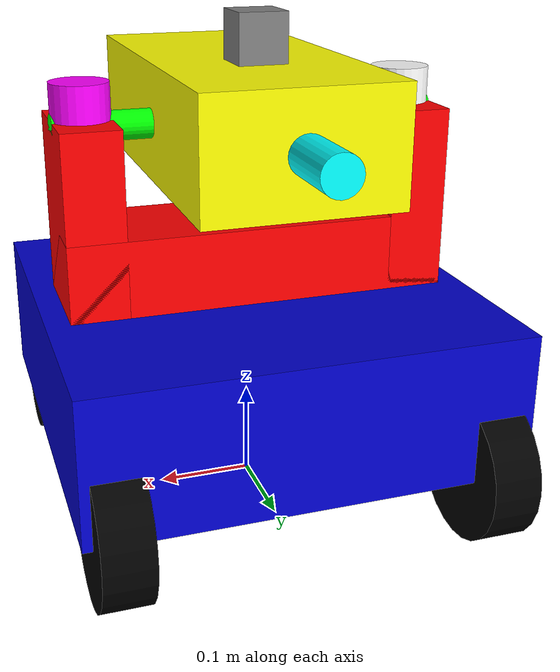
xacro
<?xml version="1.0"?>
<robot name="sentry_robot" xmlns:xacro="http://ros.org/wiki/xacro">

  <!-- Chassis (OnShape chassis_link collision: 0.45 x 0.38 x 0.45, Y-up)
       Footprint 0.45 x 0.45m kept; height simplified to 0.15m for flat chassis body. -->
  <xacro:property name="base_width"  value="0.45"/>
  <xacro:property name="base_length" value="0.45"/>
  <xacro:property name="base_height" value="0.15"/>

  <!-- Wheel centers are at chassis_link origin height in OnShape (Y ~= 0 offset).
       So ground_offset = wheel_radius (wheels just touch the ground). -->
  <xacro:property name="ground_offset" value="0.076"/>

  <!-- Wheel dims from OnShape collision: cylinder radius=0.076, length=0.05 -->
  <xacro:property name="wheel_radius" value="0.076"/>
  <xacro:property name="wheel_width"  value="0.05"/>
  <xacro:property name="wheel_mass"   value="1.2"/>

  <!-- Wheel separation from chassis center.
       OnShape wheel positions form a 45-deg-rotated square at radius ~0.272m.
       Symmetric half-separation = 0.272 / sqrt(2) = 0.192m -> rounded to 0.19m. -->
  <xacro:property name="wheel_sep" value="0.19"/>

  <!-- Gimbal yaw motor (OnShape base_link collision: cylinder r=0.06, L=0.15) -->
  <xacro:property name="gimbal_radius" value="0.06"/>
  <xacro:property name="gimbal_height" value="0.15"/>

  <xacro:property name="turret_arm_width"        value="0.40"/>
  <xacro:property name="support_width"           value="0.06"/>
  <xacro:property name="support_length"          value="0.12"/>
  <xacro:property name="support_base_height"     value="0.08"/>
  <xacro:property name="support_standoff_height" value="0.19"/>

  <xacro:property name="turret_shaft_radius" value="0.015"/>

  <xacro:property name="turret_length" value="0.20"/>
  <xacro:property name="turret_height" value="0.12"/>
  <xacro:property name="gun_length"    value="0.30"/>

  <!-- Lidar dims (unchanged from original) -->
  <xacro:property name="lidar_length" value="0.054"/>
  <xacro:property name="lidar_width"  value="0.0414"/>
  <xacro:property name="lidar_height" value="0.0348"/>

  <!-- Robot total mass from OnShape chassis_link inertial: 9.0 kg -->
  <xacro:property name="mass" value="9.0"/>

  <!-- ==================== Inertia macros ==================== -->
  <xacro:macro name="box_inertia" params="m w h d">
    <inertial>
      <origin xyz="0 0 0" rpy="0 0 0"/>
      <mass value="${m}"/>
      <inertia
        ixx="${(m/12) * (h*h + d*d)}"
        ixy="0" ixz="0"
        iyy="${(m/12) * (w*w + d*d)}"
        iyz="0"
        izz="${(m/12) * (w*w + h*h)}"/>
    </inertial>
  </xacro:macro>

  <xacro:macro name="cylinder_inertia" params="m rad h">
    <inertial>
      <origin xyz="0 0 0" rpy="0 0 0"/>
      <mass value="${m}"/>
      <inertia
        ixx="${(m/12) * (3*rad*rad + h*h)}"
        ixy="0" ixz="0"
        iyy="${(m/12) * (3*rad*rad + h*h)}"
        iyz="0"
        izz="${(m/2) * (rad*rad)}"/>
    </inertial>
  </xacro:macro>

  <!-- ==================== base_link (chassis body) ==================== -->
  <!-- Origin at ground level; chassis body drawn above it. -->
  <link name="base_link">
    <visual>
      <origin xyz="0 0 ${base_height/2 + ground_offset}" rpy="0 0 0"/>
      <geometry>
        <box size="${base_width} ${base_length} ${base_height}"/>
      </geometry>
      <material name="blue">
        <color rgba="0 0 0.8 1"/>
      </material>
    </visual>
    <collision>
      <origin xyz="0 0 ${base_height/2 + ground_offset}" rpy="0 0 0"/>
      <geometry>
        <box size="${base_width} ${base_length} ${base_height}"/>
      </geometry>
    </collision>
    <xacro:box_inertia m="${mass}" w="${base_width}" d="${base_length}" h="${base_height}"/>
  </link>

  <!-- ==================== Wheels ==================== -->
  <!-- All four wheels use symmetric ±wheel_sep positions in X (left/right)
       and ±wheel_sep in Y (front/back). wheel_sep = 0.19m from OnShape diagonal. -->

  <!-- Front Left Wheel -->
  <link name="front_left_wheel">
    <visual>
      <geometry>
        <cylinder radius="${wheel_radius}" length="${wheel_width}"/>
      </geometry>
      <origin xyz="0 0 0" rpy="0 0 0"/>
      <material name="black">
        <color rgba="0 0 0 1"/>
      </material>
    </visual>
    <collision>
      <geometry>
        <cylinder radius="${wheel_radius}" length="${wheel_width}"/>
      </geometry>
      <origin xyz="0 0 0" rpy="0 0 0"/>
    </collision>
    <xacro:cylinder_inertia m="${wheel_mass}" rad="${wheel_radius}" h="${wheel_width}"/>
  </link>

  <joint name="front_left_wheel_joint" type="continuous">
    <parent link="base_link"/>
    <child link="front_left_wheel"/>
    <!-- +X = left side, +Y = front, z = wheel center height -->
    <origin xyz="${wheel_sep} ${wheel_sep} ${ground_offset}" rpy="0 1.5708 0"/>
    <dynamics damping="0.1" friction="0.1"/>
    <axis xyz="0 0 1"/>
  </joint>

  <!-- Front Right Wheel -->
  <link name="front_right_wheel">
    <visual>
      <geometry>
        <cylinder radius="${wheel_radius}" length="${wheel_width}"/>
      </geometry>
      <origin xyz="0 0 0" rpy="0 0 0"/>
      <material name="black">
        <color rgba="0 0 0 1"/>
      </material>
    </visual>
    <collision>
      <geometry>
        <cylinder radius="${wheel_radius}" length="${wheel_width}"/>
      </geometry>
      <origin xyz="0 0 0" rpy="0 0 0"/>
    </collision>
    <xacro:cylinder_inertia m="${wheel_mass}" rad="${wheel_radius}" h="${wheel_width}"/>
  </link>

  <joint name="front_right_wheel_joint" type="continuous">
    <parent link="base_link"/>
    <child link="front_right_wheel"/>
    <origin xyz="${-wheel_sep} ${wheel_sep} ${ground_offset}" rpy="0 1.5708 0"/>
    <dynamics damping="0.1" friction="0.1"/>
    <axis xyz="0 0 1"/>
  </joint>

  <!-- Back Left Wheel -->
  <link name="back_left_wheel">
    <visual>
      <geometry>
        <cylinder radius="${wheel_radius}" length="${wheel_width}"/>
      </geometry>
      <origin xyz="0 0 0" rpy="0 0 0"/>
      <material name="black">
        <color rgba="0 0 0 1"/>
      </material>
    </visual>
    <collision>
      <geometry>
        <cylinder radius="${wheel_radius}" length="${wheel_width}"/>
      </geometry>
      <origin xyz="0 0 0" rpy="0 0 0"/>
    </collision>
    <xacro:cylinder_inertia m="${wheel_mass}" rad="${wheel_radius}" h="${wheel_width}"/>
  </link>

  <joint name="back_left_wheel_joint" type="continuous">
    <parent link="base_link"/>
    <child link="back_left_wheel"/>
    <origin xyz="${wheel_sep} ${-wheel_sep} ${ground_offset}" rpy="0 1.5708 0"/>
    <dynamics damping="0.1" friction="0.1"/>
    <axis xyz="0 0 1"/>
  </joint>

  <!-- Back Right Wheel -->
  <link name="back_right_wheel">
    <visual>
      <origin xyz="0 0 0" rpy="0 0 0"/>
      <geometry>
        <cylinder radius="${wheel_radius}" length="${wheel_width}"/>
      </geometry>
      <material name="black">
        <color rgba="0 0 0 1"/>
      </material>
    </visual>
    <collision>
      <origin xyz="0 0 0" rpy="0 0 0"/>
      <geometry>
        <cylinder radius="${wheel_radius}" length="${wheel_width}"/>
      </geometry>
    </collision>
    <xacro:cylinder_inertia m="${wheel_mass}" rad="${wheel_radius}" h="${wheel_width}"/>
  </link>

  <joint name="back_right_wheel_joint" type="continuous">
    <parent link="base_link"/>
    <child link="back_right_wheel"/>
    <origin xyz="${-wheel_sep} ${-wheel_sep} ${ground_offset}" rpy="0 1.5708 0"/>
    <dynamics damping="0.1" friction="0.1"/>
    <axis xyz="0 0 1"/>
  </joint>

  <!-- ==================== Gimbal yaw motor ==================== -->
  <link name="gimbal_link">
    <visual>
      <origin xyz="0 0 0" rpy="0 0 0"/>
      <geometry>
        <cylinder radius="${gimbal_radius}" length="${gimbal_height}"/>
      </geometry>
      <material name="Cyan">
        <color rgba="0 1.0 1.0 1.0"/>
      </material>
    </visual>
    <collision>
      <origin xyz="0 0 0" rpy="0 0 0"/>
      <geometry>
        <cylinder radius="${gimbal_radius}" length="${gimbal_height}"/>
      </geometry>
    </collision>
    <xacro:cylinder_inertia m="1.5" rad="${gimbal_radius}" h="${gimbal_height}"/>
  </link>

  <!-- Gimbal sits at the top of the chassis body (embedded at chassis top surface). -->
  <joint name="gimbal_joint" type="fixed">
    <parent link="base_link"/>
    <child link="gimbal_link"/>
    <origin xyz="0 0 ${ground_offset + base_height}" rpy="0 0 0"/>
  </joint>

  <!-- ==================== Turret yaw arm ==================== -->
  <!-- Bottom cross-bar of the gimbal arm assembly.
       Width = turret_arm_width (0.40m) matching OnShape turret_yaw_link X span. -->
  <link name="bottom_support_link">
    <visual>
      <origin xyz="0 0 0" rpy="0 0 0"/>
      <geometry>
        <box size="${turret_arm_width} ${support_length} ${support_base_height}"/>
      </geometry>
      <material name="red">
        <color rgba="1 0 0 1"/>
      </material>
    </visual>
    <collision>
      <origin xyz="0 0 0" rpy="0 0 0"/>
      <geometry>
        <box size="${turret_arm_width} ${support_length} ${support_base_height}"/>
      </geometry>
    </collision>
    <xacro:box_inertia m="0.5" w="${turret_arm_width}" d="${support_length}" h="${support_base_height}"/>
  </link>

  <joint name="bottom_support_joint" type="fixed">
    <parent link="gimbal_link"/>
    <child link="bottom_support_link"/>
    <origin xyz="0 0 ${support_base_height/2}" rpy="0 0 0"/>
  </joint>

  <!-- Right standoff (positive X end of the arm) -->
  <link name="right_support_link">
    <visual>
      <origin xyz="0 0 0" rpy="0 0 0"/>
      <geometry>
        <box size="${support_width} ${support_length} ${support_standoff_height}"/>
      </geometry>
      <material name="red">
        <color rgba="1 0 0 1"/>
      </material>
    </visual>
    <collision>
      <origin xyz="0 0 0" rpy="0 0 0"/>
      <geometry>
        <box size="${support_width} ${support_length} ${support_standoff_height}"/>
      </geometry>
    </collision>
    <xacro:box_inertia m="0.3" w="${support_width}" d="${support_length}" h="${support_standoff_height}"/>
  </link>

  <!-- Standoff X position: arm half-span minus half standoff width -->
  <joint name="right_support_joint" type="fixed">
    <parent link="bottom_support_link"/>
    <child link="right_support_link"/>
    <origin xyz="${turret_arm_width/2 - support_width/2} 0 ${(support_standoff_height - support_base_height)/2}" rpy="0 0 0"/>
  </joint>

  <!-- Left standoff (negative X end of the arm) -->
  <link name="left_support_link">
    <visual>
      <origin xyz="0 0 0" rpy="0 0 0"/>
      <geometry>
        <box size="${support_width} ${support_length} ${support_standoff_height}"/>
      </geometry>
      <material name="red">
        <color rgba="1 0 0 1"/>
      </material>
    </visual>
    <collision>
      <origin xyz="0 0 0" rpy="0 0 0"/>
      <geometry>
        <box size="${support_width} ${support_length} ${support_standoff_height}"/>
      </geometry>
    </collision>
    <xacro:box_inertia m="0.3" w="${support_width}" d="${support_length}" h="${support_standoff_height}"/>
  </link>

  <joint name="left_support_joint" type="fixed">
    <parent link="bottom_support_link"/>
    <child link="left_support_link"/>
    <origin xyz="${-(turret_arm_width/2 - support_width/2)} 0 ${(support_standoff_height - support_base_height)/2}" rpy="0 0 0"/>
  </joint>

  <!-- Turret pivot shaft spanning the two standoffs.
       Length = turret_arm_width (0.40m) from OnShape. -->
  <link name="turret_shaft_link">
    <visual>
      <origin xyz="0 0 0" rpy="0 0 0"/>
      <geometry>
        <cylinder radius="${turret_shaft_radius}" length="${turret_arm_width}"/>
      </geometry>
      <material name="yellow">
        <color rgba="0 1 0 1"/>
      </material>
    </visual>
    <collision>
      <origin xyz="0 0 0" rpy="0 0 0"/>
      <geometry>
        <cylinder radius="${turret_shaft_radius}" length="${turret_arm_width}"/>
      </geometry>
    </collision>
    <xacro:cylinder_inertia m="0.3" rad="${turret_shaft_radius}" h="${turret_arm_width}"/>
  </link>

  <joint name="turret_shaft_joint" type="fixed">
    <parent link="bottom_support_link"/>
    <child link="turret_shaft_link"/>
    <!-- 75% up the standoff height from bottom_support center -->
    <origin xyz="0 0 ${0.75 * support_standoff_height}" rpy="0 1.5708 0"/>
  </joint>

  <!-- ==================== Gun assembly (turret_pitch) ==================== -->
  <!-- From OnShape turret_pitch_link collision: 0.20 x 0.12 x 0.30 (X x Y x Z, Y-up).
       In Z-up: turret_length=0.20 (width), turret_height=0.12 (vertical), gun_length=0.30 (depth). -->
  <link name="turret_link">
    <visual>
      <origin xyz="0 0 0" rpy="0 0 0"/>
      <geometry>
        <box size="${turret_arm_width} ${turret_length} ${turret_height}"/>
      </geometry>
      <material name="green">
        <color rgba="1 1 0 1"/>
      </material>
    </visual>
    <collision>
      <origin xyz="0 0 0" rpy="0 0 0"/>
      <geometry>
        <box size="${turret_arm_width} ${turret_length} ${turret_height}"/>
      </geometry>
    </collision>
    <xacro:box_inertia m="1.5" w="${turret_arm_width}" d="${turret_length}" h="${turret_height}"/>
  </link>

  <joint name="turret_joint" type="fixed">
    <parent link="turret_shaft_link"/>
    <child link="turret_link"/>
    <origin xyz="0 -0.02 0" rpy="1.5708 0 1.5708"/>
  </joint>

  <!-- Gun barrel (forward extent from OnShape: 0.30m depth of turret_pitch) -->
  <link name="gun_shaft_link">
    <visual>
      <origin xyz="0 0 0" rpy="0 0 0"/>
      <geometry>
        <cylinder radius="0.02" length="${gun_length}"/>
      </geometry>
      <material name="something">
        <color rgba="0 1 1 1"/>
      </material>
    </visual>
    <collision>
      <origin xyz="0 0 0" rpy="0 0 0"/>
      <geometry>
        <cylinder radius="0.02" length="${gun_length}"/>
      </geometry>
    </collision>
    <xacro:cylinder_inertia m="0.2" rad="0.02" h="${gun_length}"/>
  </link>

  <joint name="gun_shaft_joint" type="fixed">
    <parent link="turret_link"/>
    <child link="gun_shaft_link"/>
    <origin xyz="${turret_length/2 + 0.025} 0 0" rpy="0 1.5708 0"/>
    <axis xyz="0 0 1"/>
  </joint>

  <!-- ==================== LiDAR ==================== -->

  <!-- LiDAR -->
  <link name="laser_frame_right">
    <visual>
      <geometry>
        <cylinder radius="0.03" length="0.04"/>
      </geometry>
      <material name="purple">
        <color rgba="1 0 1 1"/>
      </material>
    </visual>
    <collision>
      <geometry>
        <cylinder radius="0.03" length="0.04"/>
      </geometry>
    </collision>
    <inertial>
      <mass value="0.1"/>
      <origin xyz="0 0 0" rpy="0 0 0"/>
      <inertia ixx="0.0001" ixy="0.0" ixz="0.0"
               iyy="0.0001" iyz="0.0" izz="0.0001"/>
    </inertial>
  </link>

  <joint name="laser_joint_right" type="fixed">
    <parent link="right_support_link"/>
    <child link="laser_frame_right"/>
    <origin xyz="0 0 ${support_standoff_height / 2 + lidar_height / 2}" rpy="0 0 3.1415926535"/>
  </joint>

  <link name="laser_frame_left">
    <visual>
      <geometry>
        <cylinder radius="0.03" length="0.04"/>
      </geometry>
      <material name="white">
        <color rgba="1 1 1 1"/>
      </material>
    </visual>
    <collision>
      <geometry>
        <cylinder radius="0.03" length="0.04"/>
      </geometry>
    </collision>
    <inertial>
      <mass value="0.1"/>
      <origin xyz="0 0 0" rpy="0 0 0"/>
      <inertia ixx="0.0001" ixy="0.0" ixz="0.0"
               iyy="0.0001" iyz="0.0" izz="0.0001"/>
    </inertial>
  </link>

  <joint name="laser_joint_left" type="fixed">
    <parent link="left_support_link"/>
    <child link="laser_frame_left"/>
      <origin xyz="0 0 ${support_standoff_height / 2 + lidar_height / 2}" rpy="0 0 0"/>
  </joint>

  <!-- ==================== IMU ==================== -->
  <link name="imu_link">
    <visual>
      <geometry>
        <box size="0.02 0.02 0.01"/>
      </geometry>
      <material name="green">
        <color rgba="0 1 0 1"/>
      </material>
    </visual>
    <inertial>
      <mass value="0.01"/>
      <origin xyz="0 0 0" rpy="0 0 0"/>
      <inertia ixx="0.00001" ixy="0.0" ixz="0.0"
               iyy="0.00001" iyz="0.0" izz="0.00001"/>
    </inertial>
  </link>

  <joint name="imu_joint" type="fixed">
    <parent link="turret_link"/>
    <child link="imu_link"/>
    <origin xyz="${-turret_arm_width/2 + 0.01} ${-turret_length/2 + 0.01} ${-turret_height/2 + 0.005}" rpy="0 0 0"/>
  </joint>

  <!-- ==================== Depth camera ==================== -->
  <link name="depth_camera_link">
    <visual>
      <geometry>
        <box size="0.05 0.05 0.05"/>
      </geometry>
      <material name="camera_gray">
        <color rgba="0.5 0.5 0.5 1"/>
      </material>
    </visual>
    <collision>
      <geometry>
        <box size="0.05 0.05 0.05"/>
      </geometry>
    </collision>
    <inertial>
      <mass value="0.05"/>
      <inertia ixx="1e-5" ixy="0" ixz="0"
               iyy="1e-5" iyz="0" izz="1e-5"/>
    </inertial>
  </link>

  <joint name="depth_camera_joint" type="fixed">
    <parent link="turret_link"/>
    <child link="depth_camera_link"/>
    <origin xyz="0.05 0 ${-1 * (turret_height/2 + 0.025)}" rpy="0 0 0"/>
  </joint>

  <!-- ==================== Gazebo surface props ==================== -->
  <gazebo reference="base_link">
    <mu1>0.2</mu1>
    <mu2>0.2</mu2>
    <kp>1000000.0</kp>
    <kd>100.0</kd>
    <minDepth>0.001</minDepth>
    <maxVel>1.0</maxVel>
  </gazebo>

  <gazebo reference="front_left_wheel">
    <mu1>1.0</mu1>
    <mu2>1.0</mu2>
    <kp>1000000.0</kp>
    <kd>1.0</kd>
    <minDepth>0.001</minDepth>
    <material>Gazebo/Black</material>
  </gazebo>

  <gazebo reference="front_right_wheel">
    <mu1>1.0</mu1>
    <mu2>1.0</mu2>
    <kp>1000000.0</kp>
    <kd>1.0</kd>
    <minDepth>0.001</minDepth>
    <material>Gazebo/Black</material>
  </gazebo>

  <gazebo reference="back_left_wheel">
    <mu1>1.0</mu1>
    <mu2>1.0</mu2>
    <kp>1000000.0</kp>
    <kd>1.0</kd>
    <minDepth>0.001</minDepth>
    <material>Gazebo/Black</material>
  </gazebo>

  <gazebo reference="back_right_wheel">
    <mu1>1.0</mu1>
    <mu2>1.0</mu2>
    <kp>1000000.0</kp>
    <kd>1.0</kd>
    <minDepth>0.001</minDepth>
    <material>Gazebo/Black</material>
  </gazebo>

  <!-- ==================== Gazebo plugins ==================== -->
  <!-- Planar move (omnidirectional) -->
  <gazebo>
    <plugin name="planar_move" filename="libgazebo_ros_planar_move.so">
      <ros>
        <remapping>cmd_vel:=cmd_vel</remapping>
        <remapping>odom:=odom</remapping>
      </ros>
      <update_rate>50</update_rate>
      <publish_rate>50</publish_rate>
      <publish_odom>true</publish_odom>
      <publish_odom_tf>false</publish_odom_tf>
      <odometry_frame>odom</odometry_frame>
      <robot_base_frame>base_link</robot_base_frame>
    </plugin>
  </gazebo>

  <!-- Joint state publisher — only continuous/revolute joints; fixed joints must be omitted
       or the plugin fails to initialize and publishes nothing at all. -->
  <gazebo>
    <plugin name="gazebo_ros_joint_state_publisher" filename="libgazebo_ros_joint_state_publisher.so">
      <update_rate>50</update_rate>
      <joint_name>front_left_wheel_joint</joint_name>
      <joint_name>front_right_wheel_joint</joint_name>
      <joint_name>back_left_wheel_joint</joint_name>
      <joint_name>back_right_wheel_joint</joint_name>
    </plugin>
  </gazebo>

  <!-- LiDAR left -->
  <gazebo reference="laser_frame_left">
    <sensor name="laser_left" type="ray">
      <pose>0 0 0 0 0 0</pose>
      <visualize>true</visualize>
      <update_rate>10</update_rate>
      <ray>
        <scan>
          <horizontal>
            <samples>241</samples>
            <resolution>1</resolution>
            <min_angle>1.4471975512</min_angle>
            <max_angle>4.8359877560</max_angle>
          </horizontal>
        </scan>
        <range>
          <min>0.1</min>
          <max>10.0</max>
          <resolution>0.01</resolution>
        </range>
      </ray>
      <plugin name="laser_controller_left" filename="libgazebo_ros_ray_sensor.so">
        <ros>
          <remapping>~/out:=/scan_left</remapping>
        </ros>
        <output_type>sensor_msgs/LaserScan</output_type>
        <frame_name>laser_frame_left</frame_name>
      </plugin>
    </sensor>
  </gazebo>

  <!-- LiDAR right -->
  <gazebo reference="laser_frame_right">
    <sensor name="laser_right" type="ray">
      <pose>0 0 0 0 0 0</pose>
      <visualize>true</visualize>
      <update_rate>10</update_rate>
      <ray>
        <scan>
          <horizontal>
            <samples>121</samples>
            <resolution>1</resolution>
            <min_angle>1.4471975512</min_angle>
            <max_angle>4.8359877560</max_angle>
          </horizontal>
        </scan>
        <range>
          <min>0.1</min>
          <max>10.0</max>
          <resolution>0.01</resolution>
        </range>
      </ray>
      <plugin name="laser_controller_right" filename="libgazebo_ros_ray_sensor.so">
        <ros>
          <remapping>~/out:=/scan_right</remapping>
        </ros>
        <output_type>sensor_msgs/LaserScan</output_type>
        <frame_name>laser_frame_right</frame_name>
      </plugin>
    </sensor>
  </gazebo>

  <!-- IMU -->
  <gazebo reference="imu_link">
    <gravity>true</gravity>
    <sensor name="imu_sensor" type="imu">
      <always_on>true</always_on>
      <update_rate>50</update_rate>
      <plugin filename="libgazebo_ros_imu_sensor.so" name="imu_plugin">
        <ros>
          <remapping>~/out:=imu</remapping>
        </ros>
        <initial_orientation_as_reference>false</initial_orientation_as_reference>
      </plugin>
    </sensor>
  </gazebo>

  <!-- Depth camera -->
  <gazebo reference="depth_camera_link">
    <sensor type="depth" name="depth_camera">
      <update_rate>30</update_rate>
      <camera>
        <horizontal_fov>1.047</horizontal_fov>
        <image>
          <width>640</width>
          <height>480</height>
          <format>R8G8B8</format>
        </image>
        <clip>
          <near>0.1</near>
          <far>10.0</far>
        </clip>
      </camera>
      <plugin name="depth_camera_controller" filename="libgazebo_ros_depth_camera.so">
        <ros>
          <namespace>/sentry</namespace>
        </ros>
        <frame_name>depth_camera_link</frame_name>
        <image_topic_name>image_raw</image_topic_name>
        <depth_image_topic_name>depth/image_raw</depth_image_topic_name>
        <camera_info_topic_name>camera_info</camera_info_topic_name>
        <point_cloud>true</point_cloud>
        <point_cloud_topic_name>points</point_cloud_topic_name>
      </plugin>
    </sensor>
  </gazebo>

</robot>
